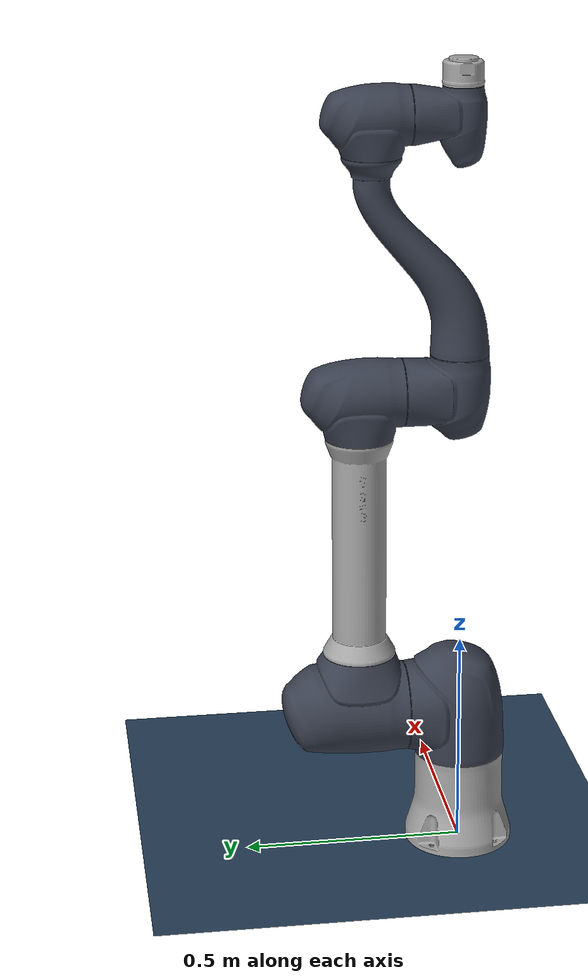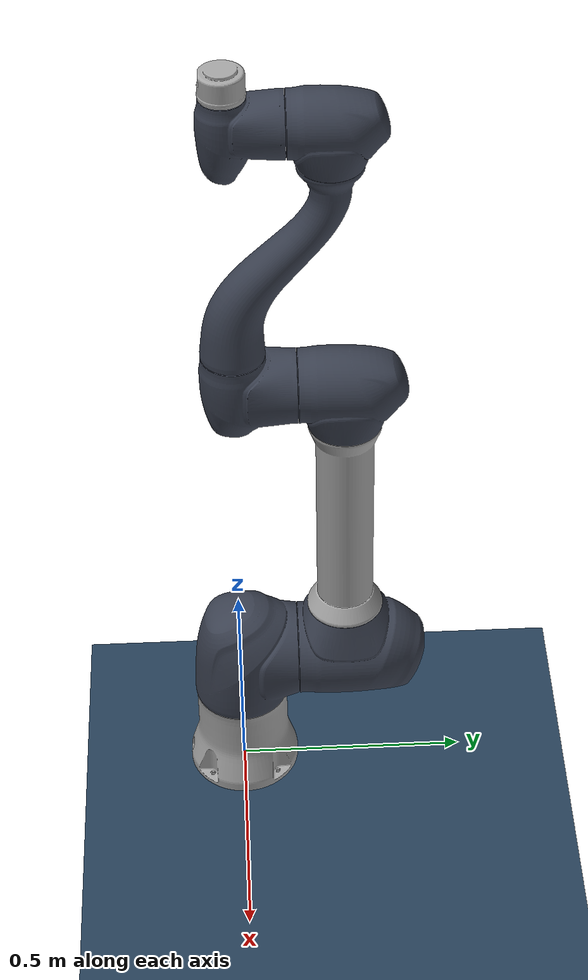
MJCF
<?xml version='1.0' encoding='utf-8'?>
<mujoco model="h2515 scene">
  <include file="h2515.xml" />
  <compiler angle="radian" meshdir="../" />

  <statistic center="0.3 0 0.4" extent="1" />

  <visual>
    <headlight diffuse="0.6 0.6 0.6" ambient="0.3 0.3 0.3" specular="0 0 0" />
    <rgba haze="0.15 0.25 0.35 1" />
    <global azimuth="120" elevation="-20" />
  </visual>

  <asset>
    <texture type="skybox" builtin="gradient" rgb1="0.3 0.5 0.7" rgb2="0 0 0" width="512" height="3072" />
    <texture type="2d" name="groundplane" builtin="checker" mark="edge" rgb1="0.2 0.3 0.4" rgb2="0.1 0.2 0.3" markrgb="0.8 0.8 0.8" width="300" height="300" />
    <material name="groundplane" texture="groundplane" texuniform="true" texrepeat="5 5" reflectance="0.2" />
  </asset>

  <worldbody>
    <light pos="0 0 1.5" dir="0 0 -1" directional="true" />
    <geom name="floor" size="0 0 0.05" type="plane" material="groundplane" />
  </worldbody>

</mujoco>

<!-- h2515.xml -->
<mujoco model="h2515">

  <asset>
    <mesh name="H2515_0_0" file="h2515/assets/H2515_0_0.stl" scale="0.001 0.001 0.001"/>
    <mesh name="H2515_1_0" file="h2515/assets/H2515_1_0.stl" scale="0.001 0.001 0.001"/>
    <mesh name="H2515_2_0" file="h2515/assets/H2515_2_0.stl" scale="0.001 0.001 0.001"/>
    <mesh name="H2515_2_1" file="h2515/assets/H2515_2_1.stl" scale="0.001 0.001 0.001"/>
    <mesh name="H2515_2_2" file="h2515/assets/H2515_2_2.stl" scale="0.001 0.001 0.001"/>
    <mesh name="H2515_3_0" file="h2515/assets/H2515_3_0.stl" scale="0.001 0.001 0.001"/>
    <mesh name="H2515_4_0" file="h2515/assets/H2515_4_0.stl" scale="0.001 0.001 0.001"/>
    <mesh name="H2515_4_1" file="h2515/assets/H2515_4_1.stl" scale="0.001 0.001 0.001"/>
    <mesh name="H2515_5_0" file="h2515/assets/H2515_5_0.stl" scale="0.001 0.001 0.001"/>
    <mesh name="H2515_6_0" file="h2515/assets/H2515_6_0.stl" scale="0.001 0.001 0.001"/>

    <material name="blue" rgba="0.227 0.251 0.31 1"/>
    <material name="metal" rgba="0.65 0.65 0.65 1"/>
  </asset>

  <worldbody>
    <geom type="mesh" contype="1" conaffinity="1" group="1" density="0" mesh="H2515_0_0" material="metal"/>
    <body name="link_1" pos="0 0 0.3443">
      <inertial pos="-5.3e-05 0.11854 -0.059979" quat="0.433455 0.901175 -0.000249559 4.48567e-05" mass="20.253" diaginertia="0.52872 0.466466 0.160934"/>
      <joint name="joint_1" pos="0 0 0" axis="0 0 1" range="-6.2832 6.2832" actuatorfrcrange="-372 372" damping="1500"/>
      <geom type="mesh" contype="1" conaffinity="1" group="1" density="0" mesh="H2515_1_0" material="blue"/>
      <body name="link_2" pos="0 0.0099 0" quat="0.499898 -0.500102 -0.5 -0.5">
        <inertial pos="0.35729 -2.4e-05 0.22527" quat="0.488728 0.510966 0.511785 0.48799" mass="28.111" diaginertia="2.5113 2.47463 0.147111"/>
        <joint name="joint_2" pos="0 0 0" axis="0 0 1" range="-2.1817 2.1817" actuatorfrcrange="-372 372" damping="1500"/>
        <geom type="mesh" contype="1" conaffinity="1" group="1" density="0" mesh="H2515_2_0" material="blue"/>
        <geom type="mesh" contype="1" conaffinity="1" group="1" density="0" mesh="H2515_2_1" material="metal"/>
        <geom type="mesh" contype="1" conaffinity="1" group="1" density="0" mesh="H2515_2_2" material="blue"/>
        <body name="link_3" pos="0.7595 0 0" quat="0.707035 0 0 0.707179">
          <inertial pos="-6.5e-05 -0.0074124 0.049527" quat="0.992581 -0.121367 0.00102818 0.00719059" mass="6.421" diaginertia="0.0423385 0.0401607 0.0273598"/>
          <joint name="joint_3" pos="0 0 0" axis="0 0 1" range="-2.7925 2.7925" actuatorfrcrange="-372 372" damping="1500"/>
          <geom type="mesh" contype="1" conaffinity="1" group="1" density="0" mesh="H2515_3_0" material="blue"/>
          <body name="link_4" pos="0 -0.6195 0" quat="0.707035 0.707179 0 0">
            <inertial pos="7.9e-05 0.13068 -0.17947" quat="0.984108 -0.177548 -0.000316986 -0.00266865" mass="7.295" diaginertia="0.41598 0.410877 0.0291385"/>
            <joint name="joint_4" pos="0 0 0" axis="0 0 1" range="-6.2832 6.2832" actuatorfrcrange="-163 163" damping="1200"/>
            <geom type="mesh" contype="1" conaffinity="1" group="1" density="0" mesh="H2515_4_0" material="blue"/>
            <geom type="mesh" contype="1" conaffinity="1" group="1" density="0" mesh="H2515_4_1" material="blue"/>
            <body name="link_5" quat="0.707035 -0.707179 0 0">
              <inertial pos="-6.1e-05 -0.000589 0.048788" quat="0.99979 0.00242364 0.000186085 0.0203461" mass="4.099" diaginertia="0.0247849 0.0242284 0.0122177"/>
              <joint name="joint_5" pos="0 0 0" axis="0 0 1" range="-6.2832 6.2832" actuatorfrcrange="-96 96" damping="1000"/>
              <geom type="mesh" contype="1" conaffinity="1" group="1" density="0" mesh="H2515_5_0" material="blue"/>
              <body name="link_6" pos="0 -0.121 0" quat="0.707035 0.707179 0 0">
                <inertial pos="-3.3e-05 1.2e-05 -0.049444" quat="0.708541 0.705011 -0.0182402 0.0244064" mass="0.897" diaginertia="0.00812142 0.00799787 0.00719801"/>
                <joint name="joint_6" pos="0 0 0" axis="0 0 1" range="-6.2832 6.2832" actuatorfrcrange="-50 50" damping="1000"/>
                <geom type="mesh" contype="1" conaffinity="1" group="1" density="0" mesh="H2515_6_0" material="metal"/>
              </body>
            </body>
          </body>
        </body>
      </body>
    </body>
  </worldbody>

	<actuator>
		<position joint="joint_1" kp="10" kv="1" ctrlrange="-6.2832 6.2832"/>
		<position joint="joint_2" kp="10" kv="1" ctrlrange="-2.1817 2.1817"/>
		<position joint="joint_3" kp="10" kv="1" ctrlrange="-2.7925 2.7925"/>
		<position joint="joint_4" kp="10" kv="1" ctrlrange="-6.2832 6.2832"/>
		<position joint="joint_5" kp="10" kv="1" ctrlrange="-6.2832 6.2832"/>
		<position joint="joint_6" kp="10" kv="1" ctrlrange="-6.2832 6.2832"/>
	</actuator>

</mujoco>
